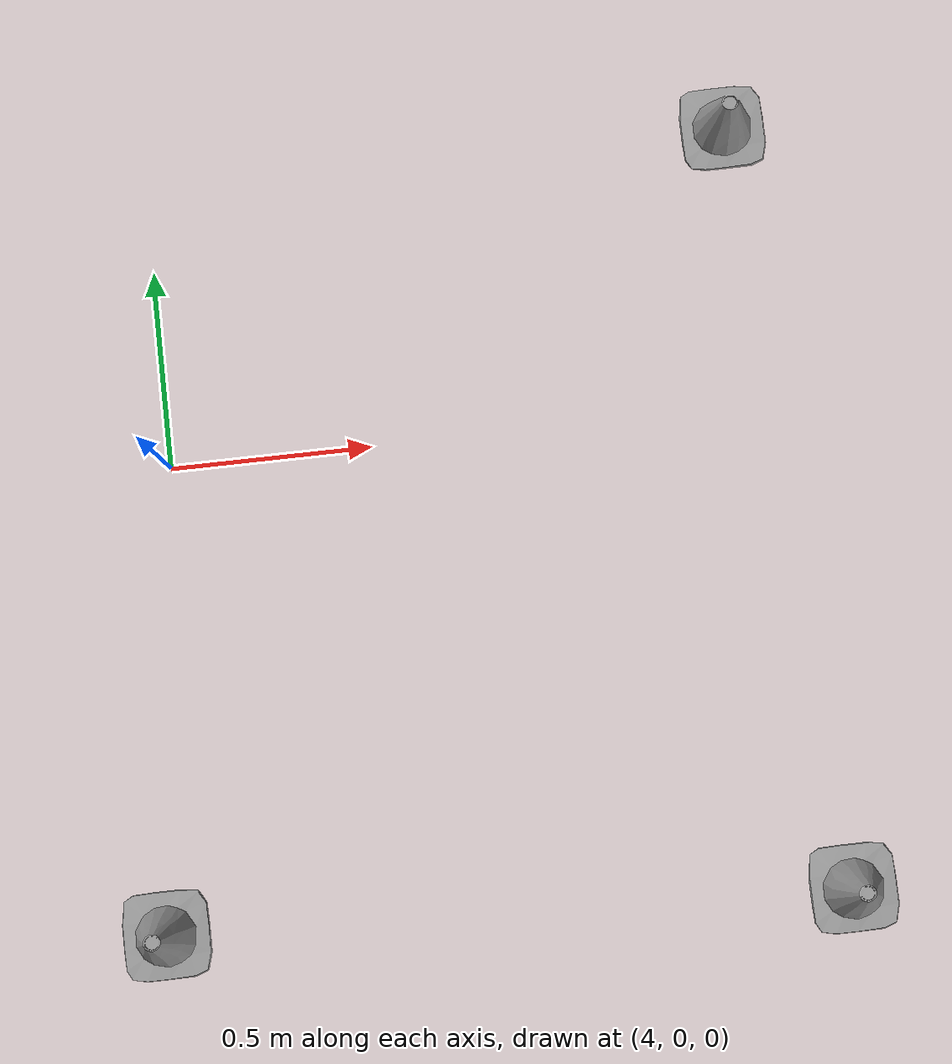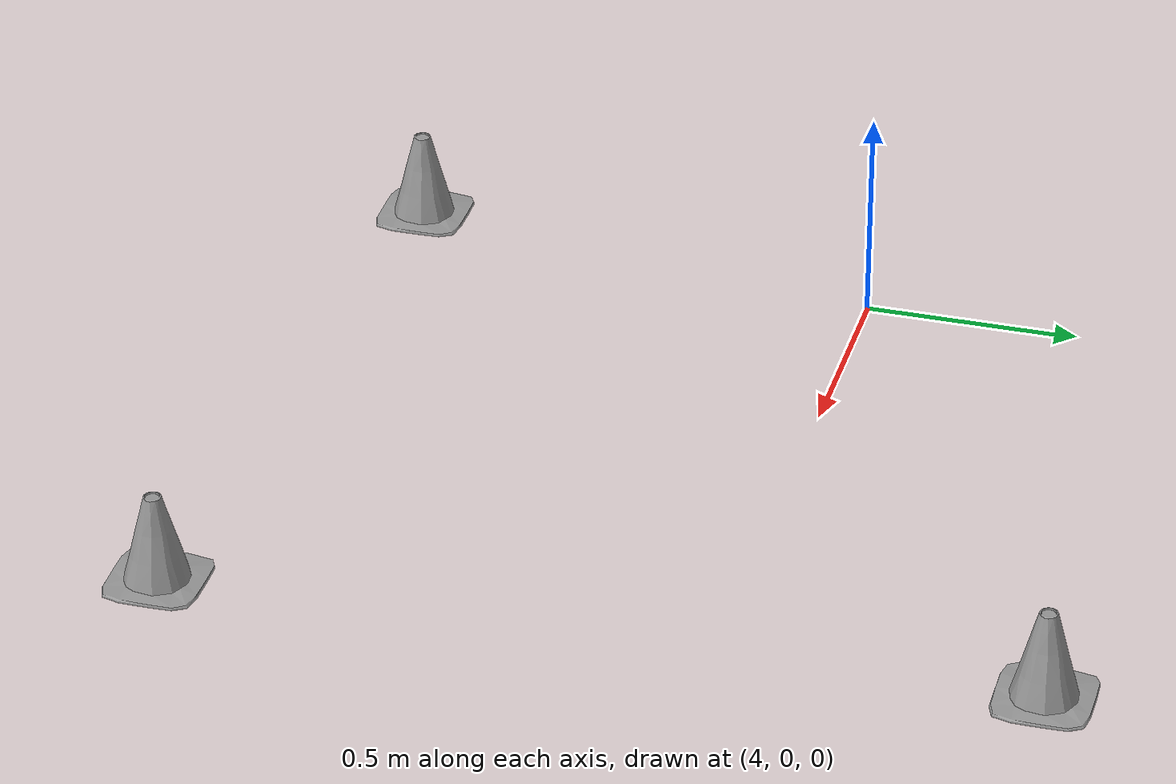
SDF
<sdf version="1.6">
 <world name="default">
  <model name="cone_mini_clone">
   <link name="link_1">
    <inertial>
     <mass>1</mass>
     <inertia>
      <ixx>0.166667</ixx>
      <ixy>0</ixy>
      <ixz>0</ixz>
      <iyy>0.166667</iyy>
      <iyz>0</iyz>
      <izz>0.166667</izz>
     </inertia>
    </inertial>
    <visual name="visual">
     <geometry>
      <mesh>
       <uri>/home/martin/catkin_ws/src/mybot/src/mybot_description/meshes/Cone/Cone_mini.dae</uri>
       <scale>1 1 1</scale>
      </mesh>
     </geometry>
     <material>
      <lighting>1</lighting>
      <script><uri>file://media/materials/scripts/gazebo.material</uri><name>Gazebo/Grey</name></script>
      <ambient>0.3 0.3 0.3 1</ambient>
      <diffuse>0.7 0.7 0.7 1</diffuse>
      <specular>0.01 0.01 0.01 1</specular>
      <emissive>0 0 0 1</emissive>
     </material>
    </visual>
    <collision name="collision">
     <geometry>
      <mesh>
       <uri>/home/martin/catkin_ws/src/mybot/src/mybot_description/meshes/Cone/Cone_mini.dae</uri>
       <scale>1 1 1</scale>
      </mesh>
     </geometry>
     <surface>
      <friction>
       <ode><mu>1</mu><mu2>1</mu2><fdir1>0 0 0</fdir1><slip1>0</slip1><slip2>0</slip2></ode>
       <torsional>
        <coefficient>1</coefficient>
        <patch_radius>0</patch_radius>
        <surface_radius>0</surface_radius>
        <use_patch_radius>1</use_patch_radius>
        <ode><slip>0</slip></ode>
       </torsional>
      </friction>
      <bounce><restitution_coefficient>0</restitution_coefficient><threshold>1e+06</threshold></bounce>
      <contact>
       <collide_without_contact>0</collide_without_contact>
       <collide_without_contact_bitmask>1</collide_without_contact_bitmask>
       <collide_bitmask>1</collide_bitmask>
       <ode>
        <soft_cfm>0</soft_cfm>
        <soft_erp>0.2</soft_erp>
        <kp>1e+13</kp>
        <kd>1</kd>
        <max_vel>0.01</max_vel>
        <min_depth>0</min_depth>
       </ode>
       <bullet>
        <split_impulse>1</split_impulse>
        <split_impulse_penetration_threshold>-0.01</split_impulse_penetration_threshold>
        <soft_cfm>0</soft_cfm>
        <soft_erp>0.2</soft_erp>
        <kp>1e+13</kp>
        <kd>1</kd>
       </bullet>
      </contact>
     </surface>
    </collision>
   </link>
   <static>1</static>
   <pose>3.88686 -0.735188 -0.627558 0 -0 0</pose>
  </model>
  <model name="cone_mini_clone_0">
   <link name="link_1">
    <inertial>
     <mass>1</mass>
     <inertia>
      <ixx>0.166667</ixx>
      <ixy>0</ixy>
      <ixz>0</ixz>
      <iyy>0.166667</iyy>
      <iyz>0</iyz>
      <izz>0.166667</izz>
     </inertia>
    </inertial>
    <visual name="visual">
     <geometry>
      <mesh>
       <uri>/home/martin/catkin_ws/src/mybot/src/mybot_description/meshes/Cone/Cone_mini.dae</uri>
       <scale>1 1 1</scale>
      </mesh>
     </geometry>
     <material>
      <lighting>1</lighting>
      <script><uri>file://media/materials/scripts/gazebo.material</uri><name>Gazebo/Grey</name></script>
      <ambient>0.3 0.3 0.3 1</ambient>
      <diffuse>0.7 0.7 0.7 1</diffuse>
      <specular>0.01 0.01 0.01 1</specular>
      <emissive>0 0 0 1</emissive>
     </material>
    </visual>
    <collision name="collision">
     <geometry>
      <mesh>
       <uri>/home/martin/catkin_ws/src/mybot/src/mybot_description/meshes/Cone/Cone_mini.dae</uri>
       <scale>1 1 1</scale>
      </mesh>
     </geometry>
     <surface>
      <friction>
       <ode><mu>1</mu><mu2>1</mu2><fdir1>0 0 0</fdir1><slip1>0</slip1><slip2>0</slip2></ode>
       <torsional>
        <coefficient>1</coefficient>
        <patch_radius>0</patch_radius>
        <surface_radius>0</surface_radius>
        <use_patch_radius>1</use_patch_radius>
        <ode><slip>0</slip></ode>
       </torsional>
      </friction>
      <bounce><restitution_coefficient>0</restitution_coefficient><threshold>1e+06</threshold></bounce>
      <contact>
       <collide_without_contact>0</collide_without_contact>
       <collide_without_contact_bitmask>1</collide_without_contact_bitmask>
       <collide_bitmask>1</collide_bitmask>
       <ode>
        <soft_cfm>0</soft_cfm>
        <soft_erp>0.2</soft_erp>
        <kp>1e+13</kp>
        <kd>1</kd>
        <max_vel>0.01</max_vel>
        <min_depth>0</min_depth>
       </ode>
       <bullet>
        <split_impulse>1</split_impulse>
        <split_impulse_penetration_threshold>-0.01</split_impulse_penetration_threshold>
        <soft_cfm>0</soft_cfm>
        <soft_erp>0.2</soft_erp>
        <kp>1e+13</kp>
        <kd>1</kd>
       </bullet>
      </contact>
     </surface>
    </collision>
   </link>
   <static>1</static>
   <pose>5.54646 -0.808159 -0.627558 0 -0 0</pose>
  </model>
  <model name="cone_mini_clone_3">
   <link name="link_1">
    <inertial>
     <mass>1</mass>
     <inertia>
      <ixx>0.166667</ixx>
      <ixy>0</ixy>
      <ixz>0</ixz>
      <iyy>0.166667</iyy>
      <iyz>0</iyz>
      <izz>0.166667</izz>
     </inertia>
    </inertial>
    <visual name="visual">
     <geometry>
      <mesh>
       <uri>/home/martin/catkin_ws/src/mybot/src/mybot_description/meshes/Cone/Cone_mini.dae</uri>
       <scale>1 1 1</scale>
      </mesh>
     </geometry>
     <material>
      <lighting>1</lighting>
      <script><uri>file://media/materials/scripts/gazebo.material</uri><name>Gazebo/Grey</name></script>
      <ambient>0.3 0.3 0.3 1</ambient>
      <diffuse>0.7 0.7 0.7 1</diffuse>
      <specular>0.01 0.01 0.01 1</specular>
      <emissive>0 0 0 1</emissive>
     </material>
    </visual>
    <collision name="collision">
     <geometry>
      <mesh>
       <uri>/home/martin/catkin_ws/src/mybot/src/mybot_description/meshes/Cone/Cone_mini.dae</uri>
       <scale>1 1 1</scale>
      </mesh>
     </geometry>
     <surface>
      <friction>
       <ode><mu>1</mu><mu2>1</mu2><fdir1>0 0 0</fdir1><slip1>0</slip1><slip2>0</slip2></ode>
       <torsional>
        <coefficient>1</coefficient>
        <patch_radius>0</patch_radius>
        <surface_radius>0</surface_radius>
        <use_patch_radius>1</use_patch_radius>
        <ode><slip>0</slip></ode>
       </torsional>
      </friction>
      <bounce><restitution_coefficient>0</restitution_coefficient><threshold>1e+06</threshold></bounce>
      <contact>
       <collide_without_contact>0</collide_without_contact>
       <collide_without_contact_bitmask>1</collide_without_contact_bitmask>
       <collide_bitmask>1</collide_bitmask>
       <ode>
        <soft_cfm>0</soft_cfm>
        <soft_erp>0.2</soft_erp>
        <kp>1e+13</kp>
        <kd>1</kd>
        <max_vel>0.01</max_vel>
        <min_depth>0</min_depth>
       </ode>
       <bullet>
        <split_impulse>1</split_impulse>
        <split_impulse_penetration_threshold>-0.01</split_impulse_penetration_threshold>
        <soft_cfm>0</soft_cfm>
        <soft_erp>0.2</soft_erp>
        <kp>1e+13</kp>
        <kd>1</kd>
       </bullet>
      </contact>
     </surface>
    </collision>
   </link>
   <static>1</static>
   <pose>5.46581 1.1061 -0.627558 0 -0 0</pose>
  </model>
 </world>
</sdf>
